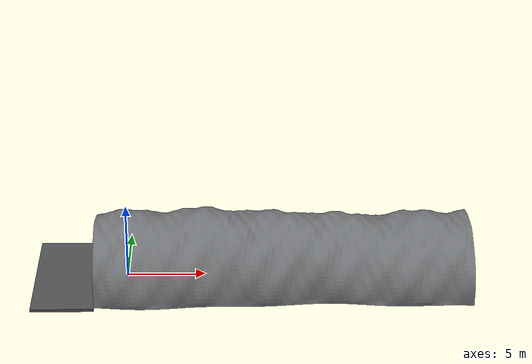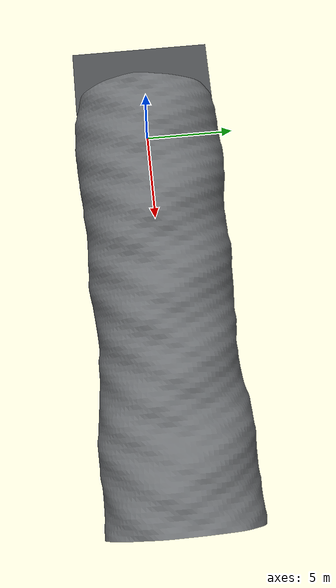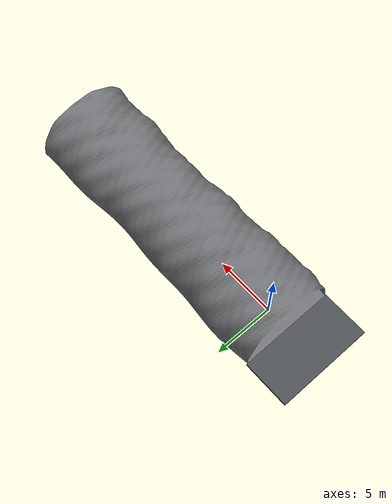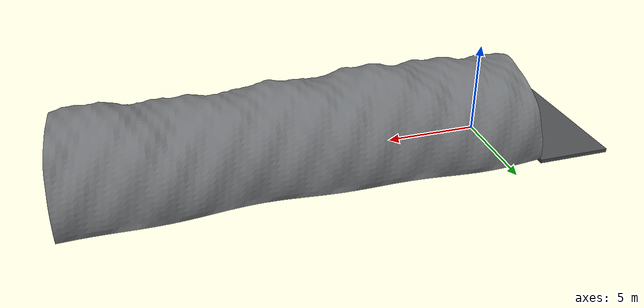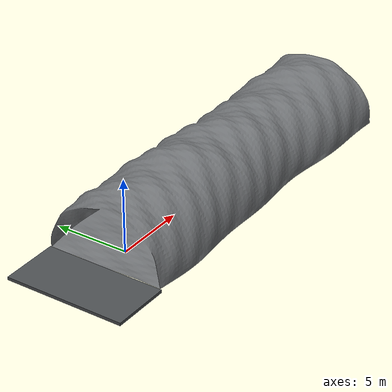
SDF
<?xml version="1.0" ?>
<sdf version="1.6">
  <world name="goaf_mine">
    <include><uri>model://sun</uri></include>

    <scene>
      <!-- Underground inspection illumination. The cavern remains dark, but
           the grey relief is visible in Gazebo without changing geometry. -->
      <ambient>0.38 0.39 0.40 1</ambient>
      <background>0.025 0.030 0.035 1</background>
      <shadows>true</shadows>
    </scene>

    <gui fullscreen="0">
      <camera name="goaf_overview">
        <pose>-4.6 0 2.15 0 0.06 0</pose>
        <view_controller>orbit</view_controller>
      </camera>
    </gui>

    <!-- Low-output inspection lamps make geometric relief readable in the
         Gazebo client. They have no effect on lidar rays or collisions. -->
    <light name="entrance_work_light" type="point">
      <pose>-1.0 0 2.8 0 0 0</pose>
      <diffuse>0.52 0.54 0.57 1</diffuse>
      <specular>0.04 0.04 0.04 1</specular>
      <attenuation><range>13</range><constant>0.35</constant><linear>0.045</linear><quadratic>0.010</quadratic></attenuation>
      <cast_shadows>true</cast_shadows>
    </light>
    <light name="middle_work_light" type="point">
      <pose>8.0 0 2.7 0 0 0</pose>
      <diffuse>0.42 0.44 0.47 1</diffuse>
      <specular>0.03 0.03 0.03 1</specular>
      <attenuation><range>12</range><constant>0.40</constant><linear>0.050</linear><quadratic>0.012</quadratic></attenuation>
      <cast_shadows>true</cast_shadows>
    </light>
    <light name="deep_work_light" type="point">
      <pose>17.0 0 2.6 0 0 0</pose>
      <diffuse>0.35 0.37 0.40 1</diffuse>
      <specular>0.025 0.025 0.025 1</specular>
      <attenuation><range>11</range><constant>0.45</constant><linear>0.055</linear><quadratic>0.014</quadratic></attenuation>
      <cast_shadows>true</cast_shadows>
    </light>

    <!-- Nominal mean size: 24 m long, 8 m wide and 4 m high. The actual
         surfaces contain deterministic multi-scale variation. -->
    <include>
      <uri>model://goaf_rock_24x8x4</uri>
    </include>

    <!-- A small rough-coloured staging apron outside the open entrance. It
         does not replace any cavern surface and is not used for mapping. -->
    <model name="entrance_apron">
      <static>true</static>
      <pose>-4.0 0 -0.12 0 0 0</pose>
      <link name="link">
        <collision name="collision">
          <geometry><box><size>4.0 8.2 0.20</size></box></geometry>
        </collision>
        <visual name="visual">
          <geometry><box><size>4.0 8.2 0.20</size></box></geometry>
          <material>
            <ambient>0.18 0.19 0.20 1</ambient>
            <diffuse>0.30 0.31 0.32 1</diffuse>
            <specular>0.01 0.01 0.01 1</specular>
          </material>
        </visual>
      </link>
    </model>
  </world>
</sdf>

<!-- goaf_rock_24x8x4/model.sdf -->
<sdf version="1.6">
  <model name="goaf_rock_24x8x4">
    <static>true</static>
    <link name="rock_shell">
      <collision name="collision">
        <geometry>
          <mesh><uri>model://goaf_rock_24x8x4/meshes/goaf_rock_inner.obj</uri></mesh>
        </geometry>
        <surface>
          <friction><ode><mu>1.15</mu><mu2>1.15</mu2></ode></friction>
          <contact><ode><kp>1000000</kp><kd>100</kd></ode></contact>
        </surface>
      </collision>
      <visual name="visual">
        <!-- Visual and collision deliberately reference the identical mesh so
             MID360 rays, rendered rock and physical contact agree. -->
        <geometry>
          <mesh><uri>model://goaf_rock_24x8x4/meshes/goaf_rock_inner.obj</uri></mesh>
        </geometry>
        <material>
          <ambient>0.27 0.28 0.29 1</ambient>
          <diffuse>0.44 0.45 0.46 1</diffuse>
          <specular>0.018 0.018 0.018 1</specular>
        </material>
      </visual>
    </link>
  </model>
</sdf>
